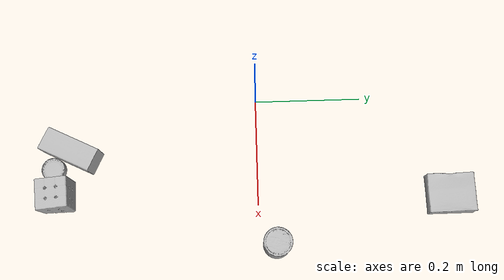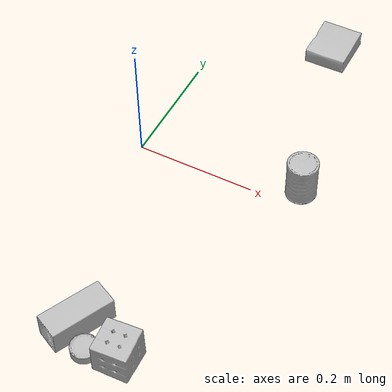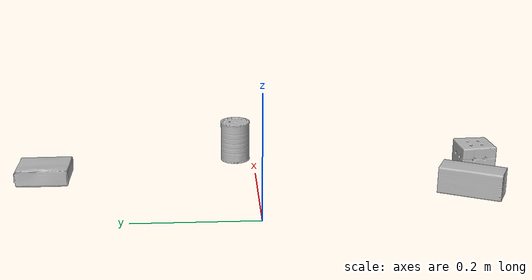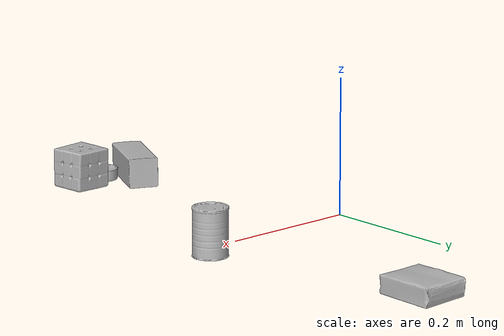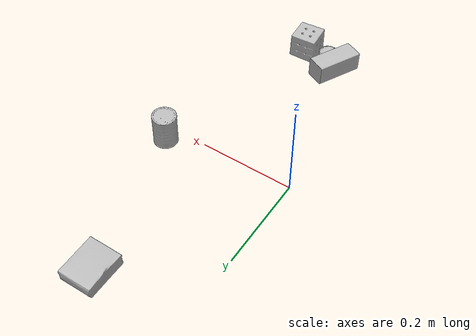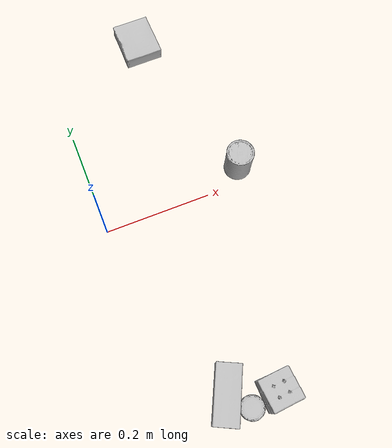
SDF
<sdf version="1.4">
  <world name="default">
    <light name="light1" type="point">
      <pose>0 0 1 0 0 0</pose>
      <diffuse>3 3 3 1</diffuse>
      <specular>3 3 3 1</specular>
    </light>
    <light name="light2" type="point">
      <pose>0 0.5 2 0 0 0</pose>
      <diffuse>1 1 1 1</diffuse>
      <specular>1 1 1 1</specular>
    </light>
    <light name="light3" type="point">
      <pose>0 0.5 2 0 0 0</pose>
      <diffuse>3 3 3 1</diffuse>
      <specular>3 3 3 1</specular>
    </light>
    <scene>
      <ambient>0.7 0.7 0.7</ambient>
    </scene>
    <model name="box1">
      <link name="link_box1">
        <collision name="default">
          <geometry>
            <mesh>
              <uri>model://rubiks_cube/collision_meshes/collision.obj</uri>
              <scale>1.0 1.0 1.0</scale>
            </mesh>
          </geometry>
          <surface>
            <friction>
              <ode>
                <mu>0.5</mu>
                <mu2>0.5</mu2>
              </ode>
            </friction>
          <contact>
        <ode>
            <max_vel>0</max_vel>
            <min_depth>0.0001</min_depth>
            <kp>1e8</kp>
        </ode>
    </contact></surface>
        </collision>
        <visual name="default">
          <geometry>
            <mesh>
              <uri>model://rubiks_cube/visual_meshes/visual.dae</uri>
              <scale>1.0 1.0 1.0</scale>
            </mesh>
          </geometry>
        </visual>
        <inertial>
          <mass>0.1675702929496765</mass>
          <pose>2.6721041649580002e-05 5.2569666877388954e-05 -7.264316082000732e-06 -0.054672410780645164 -0.09813946178663992 -0.034457105846518836</pose>
          <inertia>
            <ixx>9.259384e-05</ixx>
            <iyy>9.2162045e-05</iyy>
            <izz>9.336113e-05</izz>
            <ixy>0</ixy>
            <ixz>0</ixz>
            <iyz>0</iyz>
          </inertia>
        </inertial>
      </link>
      <pose>0.1743064671754837 -0.36834898591041565 0.02867898717522621 -9.36839087906535e-06 7.158177828073391e-07 -1.4990076864441588</pose>
    </model>
    <model name="box2">
      <link name="link_box2">
        <collision name="default">
          <geometry>
            <mesh>
              <uri>model://wood_block/collision_meshes/collision.obj</uri>
              <scale>0.5 0.5 0.5</scale>
            </mesh>
          </geometry>
          <surface>
            <friction>
              <ode>
                <mu>0.5</mu>
                <mu2>0.5</mu2>
              </ode>
            </friction>
          <contact>
        <ode>
            <max_vel>0</max_vel>
            <min_depth>0.0001</min_depth>
            <kp>1e8</kp>
        </ode>
    </contact></surface>
        </collision>
        <visual name="default">
          <geometry>
            <mesh>
              <uri>model://wood_block/visual_meshes/visual.dae</uri>
              <scale>0.5 0.5 0.5</scale>
            </mesh>
          </geometry>
        </visual>
        <inertial>
          <mass>0.20594346523284912</mass>
          <pose>-2.9066577553749084e-06 -0.000285404734313488 0.00013204291462898254 -0.05220975528833662 -0.005192695571830849 -0.0068613788586691015</pose>
          <inertia>
            <ixx>6.8895875e-05</ixx>
            <iyy>0.0002176421</iyy>
            <izz>0.00021682802</izz>
            <ixy>0</ixy>
            <ixz>0</ixz>
            <iyz>0</iyz>
          </inertia>
        </inertial>
      </link>
      <pose>0.0916244387626648 -0.34430837631225586 0.022629264742136 -0.005208518575786886 0.005718701417027224 -2.0209014055290813</pose>
    </model>
    <model name="box3">
      <link name="link_box3">
        <collision name="default">
          <geometry>
            <mesh>
              <uri>model://gelatin_box/collision_meshes/collision.obj</uri>
              <scale>1.0 1.0 1.0</scale>
            </mesh>
          </geometry>
          <surface>
            <friction>
              <ode>
                <mu>0.5</mu>
                <mu2>0.5</mu2>
              </ode>
            </friction>
          <contact>
        <ode>
            <max_vel>0</max_vel>
            <min_depth>0.0001</min_depth>
            <kp>1e8</kp>
        </ode>
    </contact></surface>
        </collision>
        <visual name="default">
          <geometry>
            <mesh>
              <uri>model://gelatin_box/visual_meshes/visual.dae</uri>
              <scale>1.0 1.0 1.0</scale>
            </mesh>
          </geometry>
        </visual>
        <inertial>
          <mass>0.27371785044670105</mass>
          <pose>0.0004319618456065655 0.00011156871914863586 -0.0003640321083366871 -0.0010503717367230932 -0.004755817294347581 0.01644056133308036</pose>
          <inertia>
            <ixx>0.00019322247</ixx>
            <iyy>0.00013801781</iyy>
            <izz>0.00029412765</izz>
            <ixy>0</ixy>
            <ixz>0</ixz>
            <iyz>0</iyz>
          </inertia>
        </inertial>
      </link>
      <pose>0.19004961848258972 0.355186402797699 0.01516831573098898 0.005597114139804003 -0.00730418160485903 -3.1411573958583534</pose>
    </model>
    <model name="can1">
      <link name="link_can1">
        <collision name="default">
          <geometry>
            <mesh>
              <uri>model://master_chef_can/collision_meshes/collision.obj</uri>
              <scale>0.5 0.5 0.5</scale>
            </mesh>
          </geometry>
          <surface>
            <friction>
              <ode>
                <mu>0.5</mu>
                <mu2>0.5</mu2>
              </ode>
            </friction>
          <contact>
        <ode>
            <max_vel>0</max_vel>
            <min_depth>0.0001</min_depth>
            <kp>1e8</kp>
        </ode>
    </contact></surface>
        </collision>
        <visual name="default">
          <geometry>
            <mesh>
              <uri>model://master_chef_can/visual_meshes/visual.dae</uri>
              <scale>0.5 0.5 0.5</scale>
            </mesh>
          </geometry>
        </visual>
        <inertial>
          <mass>0.18439537286758423</mass>
          <pose>-4.6619643399026245e-05 1.3926847941547749e-07 -5.080040136817843e-05 -0.0017995053130472594 0.0006479450382529565 -0.6102509153361354</pose>
          <inertia>
            <ixx>0.00010822757</ixx>
            <iyy>0.00010743104</iyy>
            <izz>5.9804017e-05</izz>
            <ixy>0</ixy>
            <ixz>0</ixz>
            <iyz>0</iyz>
          </inertia>
        </inertial>
      </link>
      <pose>0.27376893162727356 0.03212173655629158 0.035301998257637024 -1.0352393344760264e-06 -9.147491472468351e-07 1.8430067586987664</pose>
    </model>
    <model name="can2">
      <link name="link_can2">
        <collision name="default">
          <geometry>
            <mesh>
              <uri>model://tuna_fish_can/collision_meshes/collision.obj</uri>
              <scale>0.5 0.5 0.5</scale>
            </mesh>
          </geometry>
          <surface>
            <friction>
              <ode>
                <mu>0.5</mu>
                <mu2>0.5</mu2>
              </ode>
            </friction>
          <contact>
        <ode>
            <max_vel>0</max_vel>
            <min_depth>0.0001</min_depth>
            <kp>1e8</kp>
        </ode>
    </contact></surface>
        </collision>
        <visual name="default">
          <geometry>
            <mesh>
              <uri>model://tuna_fish_can/visual_meshes/visual.dae</uri>
              <scale>0.5 0.5 0.5</scale>
            </mesh>
          </geometry>
        </visual>
        <inertial>
          <mass>0.02825223281979561</mass>
          <pose>-2.0362142095109448e-05 -7.256046956172213e-06 -0.0005269023240543902 -0.0017944745775900258 0.00017164550693472895 0.24055441971144348</pose>
          <inertia>
            <ixx>3.819744e-06</ixx>
            <iyy>3.803824e-06</iyy>
            <izz>6.536128e-06</izz>
            <ixy>0</ixy>
            <ixz>0</ixz>
            <iyz>0</iyz>
          </inertia>
        </inertial>
      </link>
      <pose>0.12370096147060394 -0.3784182667732239 0.008520201779901981 -3.70497060477183e-05 3.2564259900992494e-05 2.7764262824042554</pose>
    </model>
  <physics type="ode">
      <max_contacts>50</max_contacts>
      <ode>
        <solver>
          <type>quick</type>
          <iters>75</iters>
        </solver>
        <constraints>
          <contact_max_correcting_vel>0</contact_max_correcting_vel>
          <contact_surface_layer>0</contact_surface_layer>
        </constraints>
      </ode>
    </physics></world>
</sdf>
